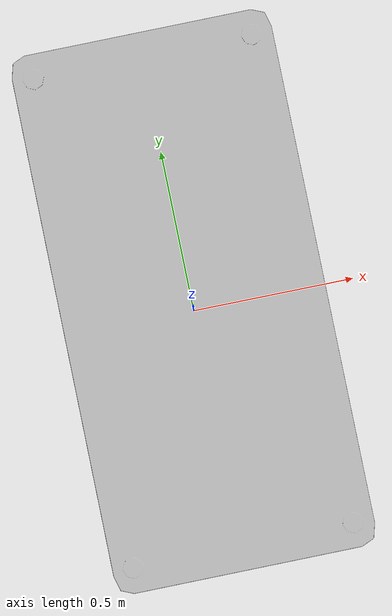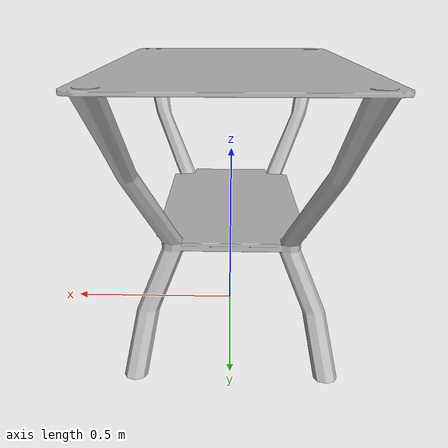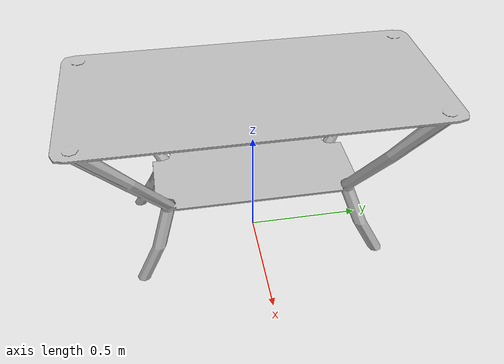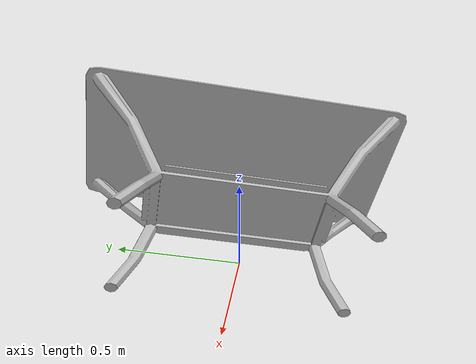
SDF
<?xml version='1.0'?>
<sdf version='1.4'>
  <model name='41'>
    <pose>0 0 0 0 0 0</pose>
    <static>true</static>
    <link name='link'>
      <collision name='collision'>
        <pose>0 0 0 0 0 0</pose>
        <geometry>
          <box>
            <size>0.749976 1.55 2</size>
          </box>
        </geometry>
      </collision>
      <visual name='visual'>
        <pose>0 0 0 0 0 0</pose>
        <geometry>
          <mesh><uri>model://41/41.dae</uri></mesh>
        </geometry>
      </visual>
    </link>
  </model>
</sdf>
